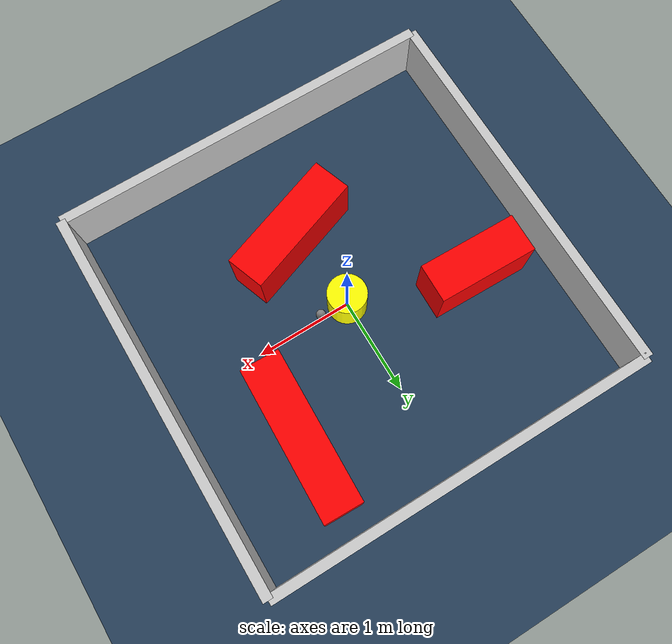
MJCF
<?xml version="1.0" ?>
<mujoco model="generated_environment">
  <option timestep="0.01" integrator="RK4" cone="elliptic"/>
  <default>
    <geom density="1"/>
  </default>
  <asset>
    <texture builtin="gradient" height="3072" rgb1="0.3 0.5 0.7" rgb2="0 0 0" type="skybox" width="512"/>
    <texture builtin="checker" height="300" mark="edge" markrgb="0.8 0.8 0.8" name="groundplane" rgb1="0.2 0.3 0.4" rgb2="0.1 0.2 0.3" type="2d" width="300"/>
    <material name="groundplane" reflectance="0.2" texrepeat="5 5" texture="groundplane" texuniform="true"/>
    <material name="robot" rgba="0.0 1.0 0.0 1"/>
  </asset>
  <worldbody>
    <light dir="0 0 -1" directional="true" pos="0 0 1.5"/>
    <geom condim="4" friction="1.0 0.005 0.001" material="groundplane" name="floor" size="0 0 0.05" type="plane"/>
    <body name="walls">
      <geom name="wall_1" condim="4" pos="-2.0 0.0 0.3" rgba="0.800000011920929 0.800000011920929 0.800000011920929 1.0" size="0.05 2.0 0.3" type="box"/>
      <geom name="wall_2" condim="4" pos="2.0 0.0 0.3" rgba="0.800000011920929 0.800000011920929 0.800000011920929 1.0" size="0.05 2.0 0.3" type="box"/>
      <geom name="wall_3" condim="4" pos="0.0 -2.0 0.3" rgba="0.800000011920929 0.800000011920929 0.800000011920929 1.0" size="2.0 0.05 0.3" type="box"/>
      <geom name="wall_4" condim="4" pos="0.0 2.0 0.3" rgba="0.800000011920929 0.800000011920929 0.800000011920929 1.0" size="2.0 0.05 0.3" type="box"/>
    </body>
    <body name="robot">
      <joint name="joint_x" type="slide" pos="0 0 0" axis="1 0 0"/>
      <joint name="joint_y" type="slide" pos="0 0 0" axis="0 1 0"/>
      <geom name="robot" type="sphere" pos="0.3 0.0 0.2" size="0.05" mass="5." friction="1.0 0.005 0.0001" condim="4" rgba="0.5 0.5 0.5 1.0"/>
      <site name="sensor_ball"/>
    </body>
    <body name="obstacle_movable_1">
      <geom name="obstacle_movable_1" condim="4" pos="0.0 0.0 0.2" euler="0 0 0.0" friction="1.0 0.005 0.001" rgba="1.0 1.0 0.0 1.0" size="0.2 0.2 0.0" type="cylinder" mass="0.1"/>
      <joint type="free"/>
    </body>
    <body name="obstacle_2_static">
      <geom name="obstacle_2_static" condim="4" pos="1.0662547481028772 0.9502115299615832 0.3" euler="0 0 88.43230938253707" friction="1.0 0.005 0.001" rgba="1 0 0 1" size="0.7805855286582664 0.2 0.3" type="box"/>
    </body>
    <body name="obstacle_3_static">
      <geom name="obstacle_3_static" condim="4" pos="-1.2098768818966925 0.3955778716909333 0.3" euler="0 0 358.8466593993796" friction="1.0 0.005 0.001" rgba="1 0 0 1" size="0.512403373043297 0.2 0.3" type="box"/>
    </body>
    <body name="obstacle_4_static">
      <geom name="obstacle_4_static" condim="4" pos="0.1389213869769821 -0.840457448827456 0.3" euler="0 0 19.691335350536562" friction="1.0 0.005 0.001" rgba="1 0 0 1" size="0.650526920382428 0.2 0.3" type="box"/>
    </body>
  </worldbody>
  <actuator>
    <motor name="actuator_x" joint="joint_x" gear="1" ctrlrange="-1 1"/>
    <motor name="actuator_y" joint="joint_y" gear="1" ctrlrange="-1 1"/>
  </actuator>
</mujoco>
